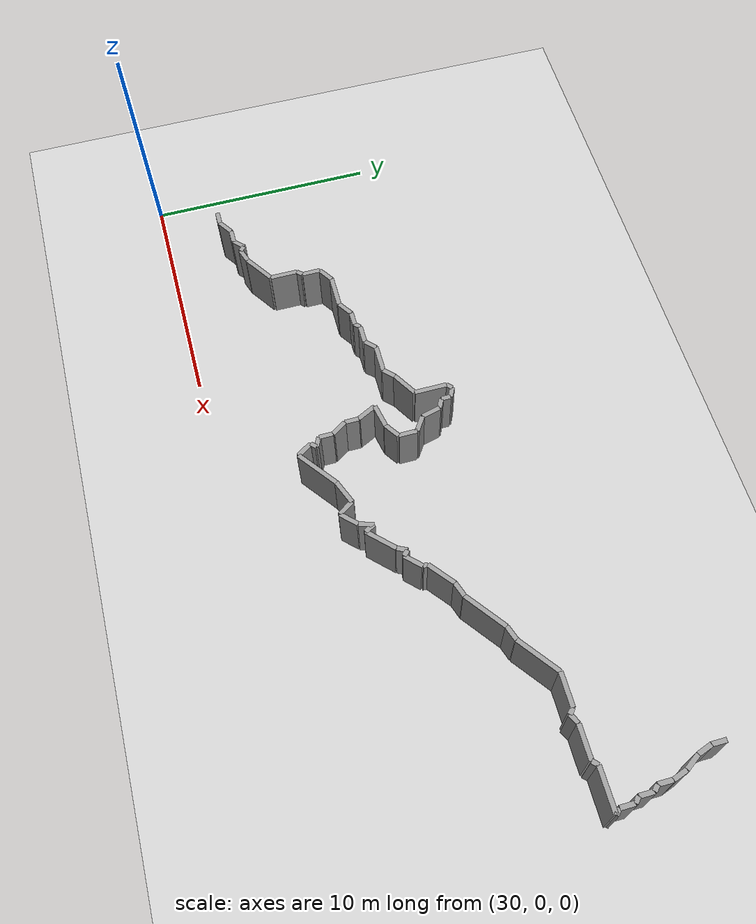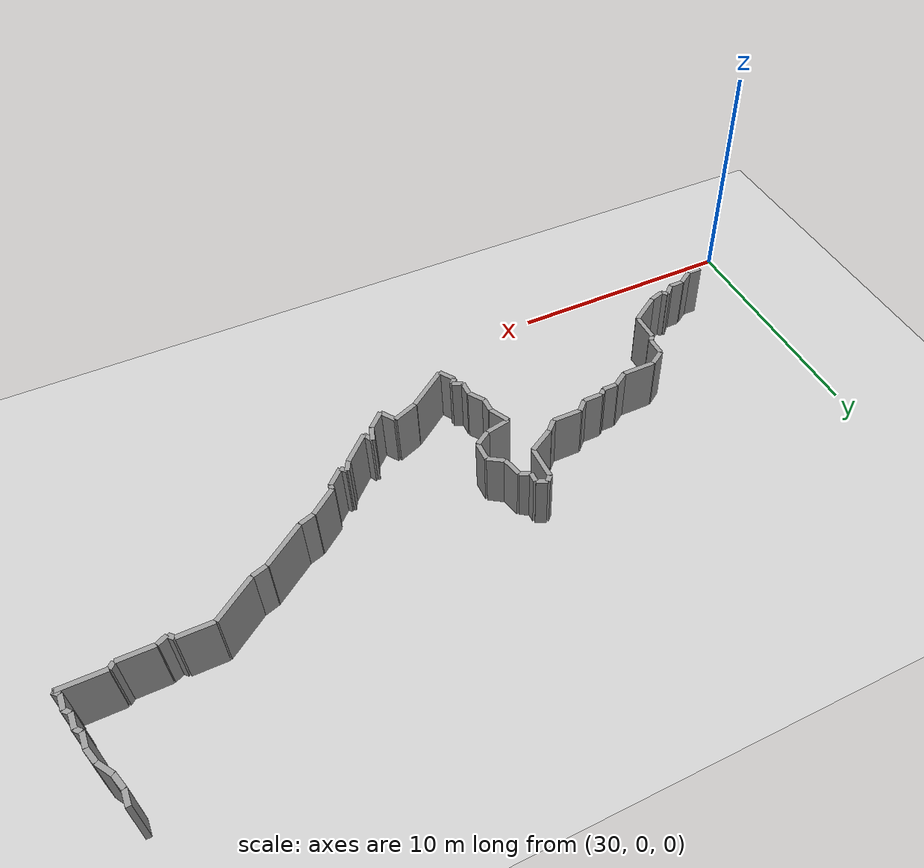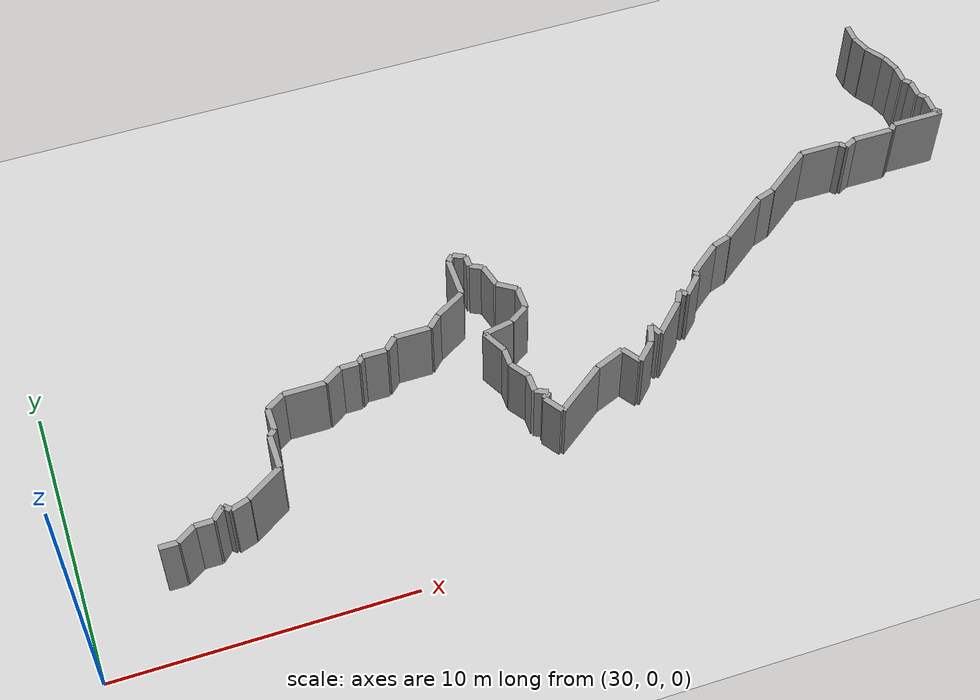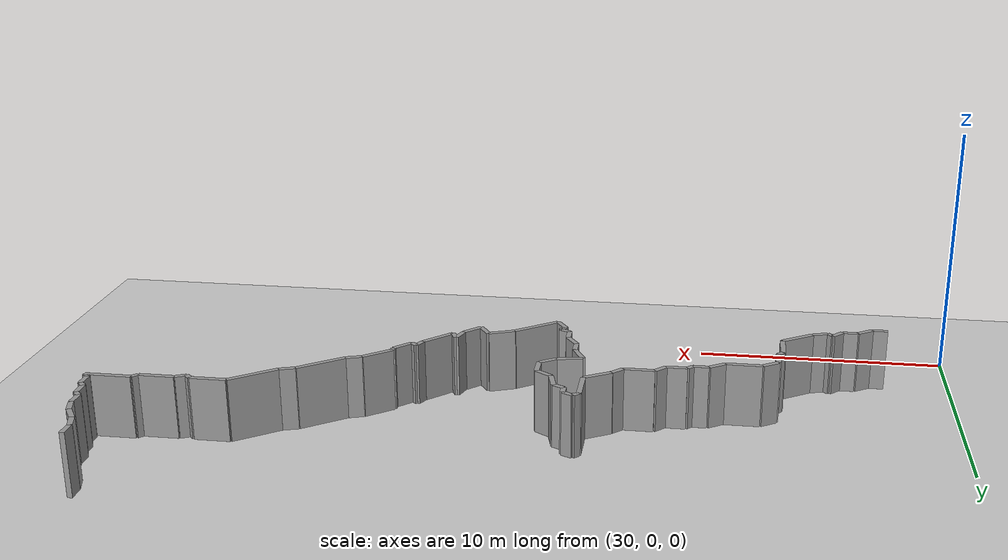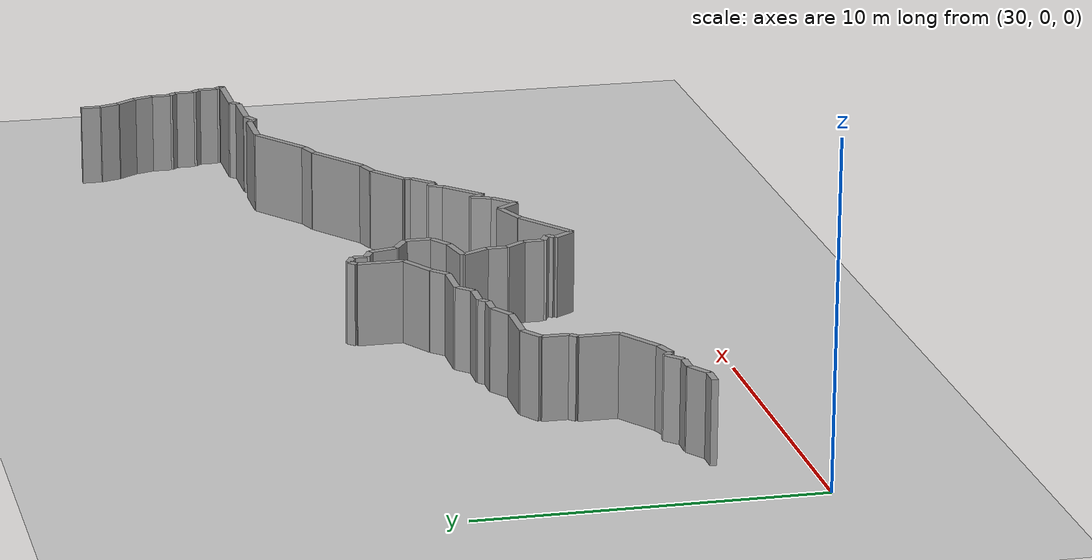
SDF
<sdf version="1.4">
 <world name="1_wall">
  <model name="ground_plane">
   <static>1</static>
   <link name="link">
    <collision name="collision">
     <geometry><plane><normal>0 0 1</normal><size>1000 1000</size></plane></geometry>
     <surface><friction><ode><mu>100</mu><mu2>50</mu2></ode></friction></surface>
    </collision>
    <visual name="visual">
     <cast_shadows>0</cast_shadows>
     <geometry><plane><normal>0 0 1</normal><size>10000 10000</size></plane></geometry>
     <material>
      <script><uri>file://media/materials/scripts/gazebo.material</uri><name>Gazebo/Grey</name></script>
     </material>
    </visual>
    <velocity_decay><linear>0</linear><angular>0</angular></velocity_decay>
   </link>
  </model>
  <model name="Wall_414">
   <static>1</static>
   <link name="Wall_414">
    <collision name="Wall_Collision_414">
     <geometry><box><size>0.6 0.2 2.5</size></box></geometry>
     <pose>0 0 1.25 0 -0 0</pose>
    </collision>
    <visual name="Wall_Visual_414">
     <pose>0 0 1.25 0 -0 0</pose>
     <geometry><box><size>0.6 0.2 2.5</size></box></geometry>
     <material>
      <script><uri>file://media/materials/scripts/gazebo.material</uri><name>Gazebo/Grey</name></script>
     </material>
    </visual>
    <velocity_decay><linear>0</linear><angular>0</angular></velocity_decay>
    <pose>61.2 15.5 0 0 0 -1.57079632679</pose>
   </link>
  </model>
  <model name="Wall_415">
   <static>1</static>
   <link name="Wall_415">
    <collision name="Wall_Collision_415">
     <geometry><box><size>0.632455532034 0.2 2.5</size></box></geometry>
     <pose>0 0 1.25 0 -0 0</pose>
    </collision>
    <visual name="Wall_Visual_415">
     <pose>0 0 1.25 0 -0 0</pose>
     <geometry><box><size>0.632455532034 0.2 2.5</size></box></geometry>
     <material>
      <script><uri>file://media/materials/scripts/gazebo.material</uri><name>Gazebo/Grey</name></script>
     </material>
    </visual>
    <velocity_decay><linear>0</linear><angular>0</angular></velocity_decay>
    <pose>61.3 14.9 0 0 0 -1.2490457724</pose>
   </link>
  </model>
  <model name="Wall_416">
   <static>1</static>
   <link name="Wall_416">
    <collision name="Wall_Collision_416">
     <geometry><box><size>0.721110255093 0.2 2.5</size></box></geometry>
     <pose>0 0 1.25 0 -0 0</pose>
    </collision>
    <visual name="Wall_Visual_416">
     <pose>0 0 1.25 0 -0 0</pose>
     <geometry><box><size>0.721110255093 0.2 2.5</size></box></geometry>
     <material>
      <script><uri>file://media/materials/scripts/gazebo.material</uri><name>Gazebo/Grey</name></script>
     </material>
    </visual>
    <velocity_decay><linear>0</linear><angular>0</angular></velocity_decay>
    <pose>61.6 14.3 0 0 0 -0.982793723247</pose>
   </link>
  </model>
  <model name="Wall_417">
   <static>1</static>
   <link name="Wall_417">
    <collision name="Wall_Collision_417">
     <geometry><box><size>0.632455532034 0.2 2.5</size></box></geometry>
     <pose>0 0 1.25 0 -0 0</pose>
    </collision>
    <visual name="Wall_Visual_417">
     <pose>0 0 1.25 0 -0 0</pose>
     <geometry><box><size>0.632455532034 0.2 2.5</size></box></geometry>
     <material>
      <script><uri>file://media/materials/scripts/gazebo.material</uri><name>Gazebo/Grey</name></script>
     </material>
    </visual>
    <velocity_decay><linear>0</linear><angular>0</angular></velocity_decay>
    <pose>61.9 13.7 0 0 0 -1.2490457724</pose>
   </link>
  </model>
  <model name="Wall_418">
   <static>1</static>
   <link name="Wall_418">
    <collision name="Wall_Collision_418">
     <geometry><box><size>0.6 0.2 2.5</size></box></geometry>
     <pose>0 0 1.25 0 -0 0</pose>
    </collision>
    <visual name="Wall_Visual_418">
     <pose>0 0 1.25 0 -0 0</pose>
     <geometry><box><size>0.6 0.2 2.5</size></box></geometry>
     <material>
      <script><uri>file://media/materials/scripts/gazebo.material</uri><name>Gazebo/Grey</name></script>
     </material>
    </visual>
    <velocity_decay><linear>0</linear><angular>0</angular></velocity_decay>
    <pose>62.0 13.1 0 0 0 -1.57079632679</pose>
   </link>
  </model>
  <model name="Wall_419">
   <static>1</static>
   <link name="Wall_419">
    <collision name="Wall_Collision_419">
     <geometry><box><size>0.282842712475 0.2 2.5</size></box></geometry>
     <pose>0 0 1.25 0 -0 0</pose>
    </collision>
    <visual name="Wall_Visual_419">
     <pose>0 0 1.25 0 -0 0</pose>
     <geometry><box><size>0.282842712475 0.2 2.5</size></box></geometry>
     <material>
      <script><uri>file://media/materials/scripts/gazebo.material</uri><name>Gazebo/Grey</name></script>
     </material>
    </visual>
    <velocity_decay><linear>0</linear><angular>0</angular></velocity_decay>
    <pose>62.1 12.7 0 0 0 -0.785398163397</pose>
   </link>
  </model>
  <model name="Wall_420">
   <static>1</static>
   <link name="Wall_420">
    <collision name="Wall_Collision_420">
     <geometry><box><size>0.6 0.2 2.5</size></box></geometry>
     <pose>0 0 1.25 0 -0 0</pose>
    </collision>
    <visual name="Wall_Visual_420">
     <pose>0 0 1.25 0 -0 0</pose>
     <geometry><box><size>0.6 0.2 2.5</size></box></geometry>
     <material>
      <script><uri>file://media/materials/scripts/gazebo.material</uri><name>Gazebo/Grey</name></script>
     </material>
    </visual>
    <velocity_decay><linear>0</linear><angular>0</angular></velocity_decay>
    <pose>62.2 12.3 0 0 0 -1.57079632679</pose>
   </link>
  </model>
  <model name="Wall_421">
   <static>1</static>
   <link name="Wall_421">
    <collision name="Wall_Collision_421">
     <geometry><box><size>0.282842712475 0.2 2.5</size></box></geometry>
     <pose>0 0 1.25 0 -0 0</pose>
    </collision>
    <visual name="Wall_Visual_421">
     <pose>0 0 1.25 0 -0 0</pose>
     <geometry><box><size>0.282842712475 0.2 2.5</size></box></geometry>
     <material>
      <script><uri>file://media/materials/scripts/gazebo.material</uri><name>Gazebo/Grey</name></script>
     </material>
    </visual>
    <velocity_decay><linear>0</linear><angular>0</angular></velocity_decay>
    <pose>62.3 11.9 0 0 0 -0.785398163397</pose>
   </link>
  </model>
  <model name="Wall_422">
   <static>1</static>
   <link name="Wall_422">
    <collision name="Wall_Collision_422">
     <geometry><box><size>0.6 0.2 2.5</size></box></geometry>
     <pose>0 0 1.25 0 -0 0</pose>
    </collision>
    <visual name="Wall_Visual_422">
     <pose>0 0 1.25 0 -0 0</pose>
     <geometry><box><size>0.6 0.2 2.5</size></box></geometry>
     <material>
      <script><uri>file://media/materials/scripts/gazebo.material</uri><name>Gazebo/Grey</name></script>
     </material>
    </visual>
    <velocity_decay><linear>0</linear><angular>0</angular></velocity_decay>
    <pose>62.4 11.5 0 0 0 -1.57079632679</pose>
   </link>
  </model>
  <model name="Wall_423">
   <static>1</static>
   <link name="Wall_423">
    <collision name="Wall_Collision_423">
     <geometry><box><size>0.282842712475 0.2 2.5</size></box></geometry>
     <pose>0 0 1.25 0 -0 0</pose>
    </collision>
    <visual name="Wall_Visual_423">
     <pose>0 0 1.25 0 -0 0</pose>
     <geometry><box><size>0.282842712475 0.2 2.5</size></box></geometry>
     <material>
      <script><uri>file://media/materials/scripts/gazebo.material</uri><name>Gazebo/Grey</name></script>
     </material>
    </visual>
    <velocity_decay><linear>0</linear><angular>0</angular></velocity_decay>
    <pose>62.5 11.1 0 0 0 -0.785398163397</pose>
   </link>
  </model>
  <model name="Wall_424">
   <static>1</static>
   <link name="Wall_424">
    <collision name="Wall_Collision_424">
     <geometry><box><size>1.8 0.2 2.5</size></box></geometry>
     <pose>0 0 1.25 0 -0 0</pose>
    </collision>
    <visual name="Wall_Visual_424">
     <pose>0 0 1.25 0 -0 0</pose>
     <geometry><box><size>1.8 0.2 2.5</size></box></geometry>
     <material>
      <script><uri>file://media/materials/scripts/gazebo.material</uri><name>Gazebo/Grey</name></script>
     </material>
    </visual>
    <velocity_decay><linear>0</linear><angular>0</angular></velocity_decay>
    <pose>61.7 11.0 0 0 0 3.14159265359</pose>
   </link>
  </model>
  <model name="Wall_425">
   <static>1</static>
   <link name="Wall_425">
    <collision name="Wall_Collision_425">
     <geometry><box><size>0.282842712475 0.2 2.5</size></box></geometry>
     <pose>0 0 1.25 0 -0 0</pose>
    </collision>
    <visual name="Wall_Visual_425">
     <pose>0 0 1.25 0 -0 0</pose>
     <geometry><box><size>0.282842712475 0.2 2.5</size></box></geometry>
     <material>
      <script><uri>file://media/materials/scripts/gazebo.material</uri><name>Gazebo/Grey</name></script>
     </material>
    </visual>
    <velocity_decay><linear>0</linear><angular>0</angular></velocity_decay>
    <pose>60.7 10.9 0 0 0 -2.35619449019</pose>
   </link>
  </model>
  <model name="Wall_426">
   <static>1</static>
   <link name="Wall_426">
    <collision name="Wall_Collision_426">
     <geometry><box><size>1.4 0.2 2.5</size></box></geometry>
     <pose>0 0 1.25 0 -0 0</pose>
    </collision>
    <visual name="Wall_Visual_426">
     <pose>0 0 1.25 0 -0 0</pose>
     <geometry><box><size>1.4 0.2 2.5</size></box></geometry>
     <material>
      <script><uri>file://media/materials/scripts/gazebo.material</uri><name>Gazebo/Grey</name></script>
     </material>
    </visual>
    <velocity_decay><linear>0</linear><angular>0</angular></velocity_decay>
    <pose>59.9 10.8 0 0 0 3.14159265359</pose>
   </link>
  </model>
  <model name="Wall_427">
   <static>1</static>
   <link name="Wall_427">
    <collision name="Wall_Collision_427">
     <geometry><box><size>0.4472135955 0.2 2.5</size></box></geometry>
     <pose>0 0 1.25 0 -0 0</pose>
    </collision>
    <visual name="Wall_Visual_427">
     <pose>0 0 1.25 0 -0 0</pose>
     <geometry><box><size>0.4472135955 0.2 2.5</size></box></geometry>
     <material>
      <script><uri>file://media/materials/scripts/gazebo.material</uri><name>Gazebo/Grey</name></script>
     </material>
    </visual>
    <velocity_decay><linear>0</linear><angular>0</angular></velocity_decay>
    <pose>59.0 10.7 0 0 0 -2.67794504459</pose>
   </link>
  </model>
  <model name="Wall_428">
   <static>1</static>
   <link name="Wall_428">
    <collision name="Wall_Collision_428">
     <geometry><box><size>0.282842712475 0.2 2.5</size></box></geometry>
     <pose>0 0 1.25 0 -0 0</pose>
    </collision>
    <visual name="Wall_Visual_428">
     <pose>0 0 1.25 0 -0 0</pose>
     <geometry><box><size>0.282842712475 0.2 2.5</size></box></geometry>
     <material>
      <script><uri>file://media/materials/scripts/gazebo.material</uri><name>Gazebo/Grey</name></script>
     </material>
    </visual>
    <velocity_decay><linear>0</linear><angular>0</angular></velocity_decay>
    <pose>58.7 10.7 0 0 0 2.35619449019</pose>
   </link>
  </model>
  <model name="Wall_429">
   <static>1</static>
   <link name="Wall_429">
    <collision name="Wall_Collision_429">
     <geometry><box><size>1.4 0.2 2.5</size></box></geometry>
     <pose>0 0 1.25 0 -0 0</pose>
    </collision>
    <visual name="Wall_Visual_429">
     <pose>0 0 1.25 0 -0 0</pose>
     <geometry><box><size>1.4 0.2 2.5</size></box></geometry>
     <material>
      <script><uri>file://media/materials/scripts/gazebo.material</uri><name>Gazebo/Grey</name></script>
     </material>
    </visual>
    <velocity_decay><linear>0</linear><angular>0</angular></velocity_decay>
    <pose>57.9 10.8 0 0 0 3.14159265359</pose>
   </link>
  </model>
  <model name="Wall_430">
   <static>1</static>
   <link name="Wall_430">
    <collision name="Wall_Collision_430">
     <geometry><box><size>2.0 0.2 2.5</size></box></geometry>
     <pose>0 0 1.25 0 -0 0</pose>
    </collision>
    <visual name="Wall_Visual_430">
     <pose>0 0 1.25 0 -0 0</pose>
     <geometry><box><size>2.0 0.2 2.5</size></box></geometry>
     <material>
      <script><uri>file://media/materials/scripts/gazebo.material</uri><name>Gazebo/Grey</name></script>
     </material>
    </visual>
    <velocity_decay><linear>0</linear><angular>0</angular></velocity_decay>
    <pose>56.4 10.2 0 0 0 -2.4980915448</pose>
   </link>
  </model>
  <model name="Wall_431">
   <static>1</static>
   <link name="Wall_431">
    <collision name="Wall_Collision_431">
     <geometry><box><size>0.632455532034 0.2 2.5</size></box></geometry>
     <pose>0 0 1.25 0 -0 0</pose>
    </collision>
    <visual name="Wall_Visual_431">
     <pose>0 0 1.25 0 -0 0</pose>
     <geometry><box><size>0.632455532034 0.2 2.5</size></box></geometry>
     <material>
      <script><uri>file://media/materials/scripts/gazebo.material</uri><name>Gazebo/Grey</name></script>
     </material>
    </visual>
    <velocity_decay><linear>0</linear><angular>0</angular></velocity_decay>
    <pose>55.3 9.5 0 0 0 -2.81984209919</pose>
   </link>
  </model>
  <model name="Wall_432">
   <static>1</static>
   <link name="Wall_432">
    <collision name="Wall_Collision_432">
     <geometry><box><size>2.0 0.2 2.5</size></box></geometry>
     <pose>0 0 1.25 0 -0 0</pose>
    </collision>
    <visual name="Wall_Visual_432">
     <pose>0 0 1.25 0 -0 0</pose>
     <geometry><box><size>2.0 0.2 2.5</size></box></geometry>
     <material>
      <script><uri>file://media/materials/scripts/gazebo.material</uri><name>Gazebo/Grey</name></script>
     </material>
    </visual>
    <velocity_decay><linear>0</linear><angular>0</angular></velocity_decay>
    <pose>54.2 8.8 0 0 0 -2.4980915448</pose>
   </link>
  </model>
  <model name="Wall_433">
   <static>1</static>
   <link name="Wall_433">
    <collision name="Wall_Collision_433">
     <geometry><box><size>0.632455532034 0.2 2.5</size></box></geometry>
     <pose>0 0 1.25 0 -0 0</pose>
    </collision>
    <visual name="Wall_Visual_433">
     <pose>0 0 1.25 0 -0 0</pose>
     <geometry><box><size>0.632455532034 0.2 2.5</size></box></geometry>
     <material>
      <script><uri>file://media/materials/scripts/gazebo.material</uri><name>Gazebo/Grey</name></script>
     </material>
    </visual>
    <velocity_decay><linear>0</linear><angular>0</angular></velocity_decay>
    <pose>53.1 8.1 0 0 0 -2.81984209919</pose>
   </link>
  </model>
  <model name="Wall_434">
   <static>1</static>
   <link name="Wall_434">
    <collision name="Wall_Collision_434">
     <geometry><box><size>1.28062484749 0.2 2.5</size></box></geometry>
     <pose>0 0 1.25 0 -0 0</pose>
    </collision>
    <visual name="Wall_Visual_434">
     <pose>0 0 1.25 0 -0 0</pose>
     <geometry><box><size>1.28062484749 0.2 2.5</size></box></geometry>
     <material>
      <script><uri>file://media/materials/scripts/gazebo.material</uri><name>Gazebo/Grey</name></script>
     </material>
    </visual>
    <velocity_decay><linear>0</linear><angular>0</angular></velocity_decay>
    <pose>52.3 7.6 0 0 0 -2.46685171137</pose>
   </link>
  </model>
  <model name="Wall_435">
   <static>1</static>
   <link name="Wall_435">
    <collision name="Wall_Collision_435">
     <geometry><box><size>0.2 0.2 2.5</size></box></geometry>
     <pose>0 0 1.25 0 -0 0</pose>
    </collision>
    <visual name="Wall_Visual_435">
     <pose>0 0 1.25 0 -0 0</pose>
     <geometry><box><size>0.2 0.2 2.5</size></box></geometry>
     <material>
      <script><uri>file://media/materials/scripts/gazebo.material</uri><name>Gazebo/Grey</name></script>
     </material>
    </visual>
    <velocity_decay><linear>0</linear><angular>0</angular></velocity_decay>
    <pose>51.8 7.1 0 0 0 -1.57079632679</pose>
   </link>
  </model>
  <model name="Wall_436">
   <static>1</static>
   <link name="Wall_436">
    <collision name="Wall_Collision_436">
     <geometry><box><size>0.848528137424 0.2 2.5</size></box></geometry>
     <pose>0 0 1.25 0 -0 0</pose>
    </collision>
    <visual name="Wall_Visual_436">
     <pose>0 0 1.25 0 -0 0</pose>
     <geometry><box><size>0.848528137424 0.2 2.5</size></box></geometry>
     <material>
      <script><uri>file://media/materials/scripts/gazebo.material</uri><name>Gazebo/Grey</name></script>
     </material>
    </visual>
    <velocity_decay><linear>0</linear><angular>0</angular></velocity_decay>
    <pose>51.5 6.7 0 0 0 -2.35619449019</pose>
   </link>
  </model>
  <model name="Wall_437">
   <static>1</static>
   <link name="Wall_437">
    <collision name="Wall_Collision_437">
     <geometry><box><size>0.282842712475 0.2 2.5</size></box></geometry>
     <pose>0 0 1.25 0 -0 0</pose>
    </collision>
    <visual name="Wall_Visual_437">
     <pose>0 0 1.25 0 -0 0</pose>
     <geometry><box><size>0.282842712475 0.2 2.5</size></box></geometry>
     <material>
      <script><uri>file://media/materials/scripts/gazebo.material</uri><name>Gazebo/Grey</name></script>
     </material>
    </visual>
    <velocity_decay><linear>0</linear><angular>0</angular></velocity_decay>
    <pose>51.1 6.5 0 0 0 2.35619449019</pose>
   </link>
  </model>
  <model name="Wall_438">
   <static>1</static>
   <link name="Wall_438">
    <collision name="Wall_Collision_438">
     <geometry><box><size>0.4472135955 0.2 2.5</size></box></geometry>
     <pose>0 0 1.25 0 -0 0</pose>
    </collision>
    <visual name="Wall_Visual_438">
     <pose>0 0 1.25 0 -0 0</pose>
     <geometry><box><size>0.4472135955 0.2 2.5</size></box></geometry>
     <material>
      <script><uri>file://media/materials/scripts/gazebo.material</uri><name>Gazebo/Grey</name></script>
     </material>
    </visual>
    <velocity_decay><linear>0</linear><angular>0</angular></velocity_decay>
    <pose>50.9 6.4 0 0 0 -2.0344439358</pose>
   </link>
  </model>
  <model name="Wall_439">
   <static>1</static>
   <link name="Wall_439">
    <collision name="Wall_Collision_439">
     <geometry><box><size>1.41421356237 0.2 2.5</size></box></geometry>
     <pose>0 0 1.25 0 -0 0</pose>
    </collision>
    <visual name="Wall_Visual_439">
     <pose>0 0 1.25 0 -0 0</pose>
     <geometry><box><size>1.41421356237 0.2 2.5</size></box></geometry>
     <material>
      <script><uri>file://media/materials/scripts/gazebo.material</uri><name>Gazebo/Grey</name></script>
     </material>
    </visual>
    <velocity_decay><linear>0</linear><angular>0</angular></velocity_decay>
    <pose>50.3 5.7 0 0 0 -2.35619449019</pose>
   </link>
  </model>
  <model name="Wall_440">
   <static>1</static>
   <link name="Wall_440">
    <collision name="Wall_Collision_440">
     <geometry><box><size>0.4472135955 0.2 2.5</size></box></geometry>
     <pose>0 0 1.25 0 -0 0</pose>
    </collision>
    <visual name="Wall_Visual_440">
     <pose>0 0 1.25 0 -0 0</pose>
     <geometry><box><size>0.4472135955 0.2 2.5</size></box></geometry>
     <material>
      <script><uri>file://media/materials/scripts/gazebo.material</uri><name>Gazebo/Grey</name></script>
     </material>
    </visual>
    <velocity_decay><linear>0</linear><angular>0</angular></velocity_decay>
    <pose>49.7 5.4 0 0 0 2.0344439358</pose>
   </link>
  </model>
  <model name="Wall_441">
   <static>1</static>
   <link name="Wall_441">
    <collision name="Wall_Collision_441">
     <geometry><box><size>0.632455532034 0.2 2.5</size></box></geometry>
     <pose>0 0 1.25 0 -0 0</pose>
    </collision>
    <visual name="Wall_Visual_441">
     <pose>0 0 1.25 0 -0 0</pose>
     <geometry><box><size>0.632455532034 0.2 2.5</size></box></geometry>
     <material>
      <script><uri>file://media/materials/scripts/gazebo.material</uri><name>Gazebo/Grey</name></script>
     </material>
    </visual>
    <velocity_decay><linear>0</linear><angular>0</angular></velocity_decay>
    <pose>49.5 5.3 0 0 0 -1.89254688119</pose>
   </link>
  </model>
  <model name="Wall_442">
   <static>1</static>
   <link name="Wall_442">
    <collision name="Wall_Collision_442">
     <geometry><box><size>0.848528137424 0.2 2.5</size></box></geometry>
     <pose>0 0 1.25 0 -0 0</pose>
    </collision>
    <visual name="Wall_Visual_442">
     <pose>0 0 1.25 0 -0 0</pose>
     <geometry><box><size>0.848528137424 0.2 2.5</size></box></geometry>
     <material>
      <script><uri>file://media/materials/scripts/gazebo.material</uri><name>Gazebo/Grey</name></script>
     </material>
    </visual>
    <velocity_decay><linear>0</linear><angular>0</angular></velocity_decay>
    <pose>49.1 4.7 0 0 0 -2.35619449019</pose>
   </link>
  </model>
  <model name="Wall_443">
   <static>1</static>
   <link name="Wall_443">
    <collision name="Wall_Collision_443">
     <geometry><box><size>0.721110255093 0.2 2.5</size></box></geometry>
     <pose>0 0 1.25 0 -0 0</pose>
    </collision>
    <visual name="Wall_Visual_443">
     <pose>0 0 1.25 0 -0 0</pose>
     <geometry><box><size>0.721110255093 0.2 2.5</size></box></geometry>
     <material>
      <script><uri>file://media/materials/scripts/gazebo.material</uri><name>Gazebo/Grey</name></script>
     </material>
    </visual>
    <velocity_decay><linear>0</linear><angular>0</angular></velocity_decay>
    <pose>48.6 4.7 0 0 0 2.15879893034</pose>
   </link>
  </model>
  <model name="Wall_444">
   <static>1</static>
   <link name="Wall_444">
    <collision name="Wall_Collision_444">
     <geometry><box><size>1.07703296143 0.2 2.5</size></box></geometry>
     <pose>0 0 1.25 0 -0 0</pose>
    </collision>
    <visual name="Wall_Visual_444">
     <pose>0 0 1.25 0 -0 0</pose>
     <geometry><box><size>1.07703296143 0.2 2.5</size></box></geometry>
     <material>
      <script><uri>file://media/materials/scripts/gazebo.material</uri><name>Gazebo/Grey</name></script>
     </material>
    </visual>
    <velocity_decay><linear>0</linear><angular>0</angular></velocity_decay>
    <pose>47.9 4.8 0 0 0 -2.76108627648</pose>
   </link>
  </model>
  <model name="Wall_445">
   <static>1</static>
   <link name="Wall_445">
    <collision name="Wall_Collision_445">
     <geometry><box><size>2.0 0.2 2.5</size></box></geometry>
     <pose>0 0 1.25 0 -0 0</pose>
    </collision>
    <visual name="Wall_Visual_445">
     <pose>0 0 1.25 0 -0 0</pose>
     <geometry><box><size>2.0 0.2 2.5</size></box></geometry>
     <material>
      <script><uri>file://media/materials/scripts/gazebo.material</uri><name>Gazebo/Grey</name></script>
     </material>
    </visual>
    <velocity_decay><linear>0</linear><angular>0</angular></velocity_decay>
    <pose>46.6 4.0 0 0 0 -2.4980915448</pose>
   </link>
  </model>
  <model name="Wall_446">
   <static>1</static>
   <link name="Wall_446">
    <collision name="Wall_Collision_446">
     <geometry><box><size>0.721110255093 0.2 2.5</size></box></geometry>
     <pose>0 0 1.25 0 -0 0</pose>
    </collision>
    <visual name="Wall_Visual_446">
     <pose>0 0 1.25 0 -0 0</pose>
     <geometry><box><size>0.721110255093 0.2 2.5</size></box></geometry>
     <material>
      <script><uri>file://media/materials/scripts/gazebo.material</uri><name>Gazebo/Grey</name></script>
     </material>
    </visual>
    <velocity_decay><linear>0</linear><angular>0</angular></velocity_decay>
    <pose>45.6 3.7 0 0 0 2.15879893034</pose>
   </link>
  </model>
  <model name="Wall_447">
   <static>1</static>
   <link name="Wall_447">
    <collision name="Wall_Collision_447">
     <geometry><box><size>0.282842712475 0.2 2.5</size></box></geometry>
     <pose>0 0 1.25 0 -0 0</pose>
    </collision>
    <visual name="Wall_Visual_447">
     <pose>0 0 1.25 0 -0 0</pose>
     <geometry><box><size>0.282842712475 0.2 2.5</size></box></geometry>
     <material>
      <script><uri>file://media/materials/scripts/gazebo.material</uri><name>Gazebo/Grey</name></script>
     </material>
    </visual>
    <velocity_decay><linear>0</linear><angular>0</angular></velocity_decay>
    <pose>45.5 4.1 0 0 0 0.785398163397</pose>
   </link>
  </model>
  <model name="Wall_448">
   <static>1</static>
   <link name="Wall_448">
    <collision name="Wall_Collision_448">
     <geometry><box><size>0.4472135955 0.2 2.5</size></box></geometry>
     <pose>0 0 1.25 0 -0 0</pose>
    </collision>
    <visual name="Wall_Visual_448">
     <pose>0 0 1.25 0 -0 0</pose>
     <geometry><box><size>0.4472135955 0.2 2.5</size></box></geometry>
     <material>
      <script><uri>file://media/materials/scripts/gazebo.material</uri><name>Gazebo/Grey</name></script>
     </material>
    </visual>
    <velocity_decay><linear>0</linear><angular>0</angular></velocity_decay>
    <pose>45.4 4.3 0 0 0 2.67794504459</pose>
   </link>
  </model>
  <model name="Wall_449">
   <static>1</static>
   <link name="Wall_449">
    <collision name="Wall_Collision_449">
     <geometry><box><size>0.6 0.2 2.5</size></box></geometry>
     <pose>0 0 1.25 0 -0 0</pose>
    </collision>
    <visual name="Wall_Visual_449">
     <pose>0 0 1.25 0 -0 0</pose>
     <geometry><box><size>0.6 0.2 2.5</size></box></geometry>
     <material>
      <script><uri>file://media/materials/scripts/gazebo.material</uri><name>Gazebo/Grey</name></script>
     </material>
    </visual>
    <velocity_decay><linear>0</linear><angular>0</angular></velocity_decay>
    <pose>45.2 4.7 0 0 0 1.57079632679</pose>
   </link>
  </model>
  <model name="Wall_450">
   <static>1</static>
   <link name="Wall_450">
    <collision name="Wall_Collision_450">
     <geometry><box><size>0.721110255093 0.2 2.5</size></box></geometry>
     <pose>0 0 1.25 0 -0 0</pose>
    </collision>
    <visual name="Wall_Visual_450">
     <pose>0 0 1.25 0 -0 0</pose>
     <geometry><box><size>0.721110255093 0.2 2.5</size></box></geometry>
     <material>
      <script><uri>file://media/materials/scripts/gazebo.material</uri><name>Gazebo/Grey</name></script>
     </material>
    </visual>
    <velocity_decay><linear>0</linear><angular>0</angular></velocity_decay>
    <pose>45.0 5.3 0 0 0 2.15879893034</pose>
   </link>
  </model>
  <model name="Wall_451">
   <static>1</static>
   <link name="Wall_451">
    <collision name="Wall_Collision_451">
     <geometry><box><size>0.6 0.2 2.5</size></box></geometry>
     <pose>0 0 1.25 0 -0 0</pose>
    </collision>
    <visual name="Wall_Visual_451">
     <pose>0 0 1.25 0 -0 0</pose>
     <geometry><box><size>0.6 0.2 2.5</size></box></geometry>
     <material>
      <script><uri>file://media/materials/scripts/gazebo.material</uri><name>Gazebo/Grey</name></script>
     </material>
    </visual>
    <velocity_decay><linear>0</linear><angular>0</angular></velocity_decay>
    <pose>44.8 5.9 0 0 0 1.57079632679</pose>
   </link>
  </model>
  <model name="Wall_452">
   <static>1</static>
   <link name="Wall_452">
    <collision name="Wall_Collision_452">
     <geometry><box><size>0.894427191 0.2 2.5</size></box></geometry>
     <pose>0 0 1.25 0 -0 0</pose>
    </collision>
    <visual name="Wall_Visual_452">
     <pose>0 0 1.25 0 -0 0</pose>
     <geometry><box><size>0.894427191 0.2 2.5</size></box></geometry>
     <material>
      <script><uri>file://media/materials/scripts/gazebo.material</uri><name>Gazebo/Grey</name></script>
     </material>
    </visual>
    <velocity_decay><linear>0</linear><angular>0</angular></velocity_decay>
    <pose>44.6 6.6 0 0 0 2.0344439358</pose>
   </link>
  </model>
  <model name="Wall_453">
   <static>1</static>
   <link name="Wall_453">
    <collision name="Wall_Collision_453">
     <geometry><box><size>1.01980390272 0.2 2.5</size></box></geometry>
     <pose>0 0 1.25 0 -0 0</pose>
    </collision>
    <visual name="Wall_Visual_453">
     <pose>0 0 1.25 0 -0 0</pose>
     <geometry><box><size>1.01980390272 0.2 2.5</size></box></geometry>
     <material>
      <script><uri>file://media/materials/scripts/gazebo.material</uri><name>Gazebo/Grey</name></script>
     </material>
    </visual>
    <velocity_decay><linear>0</linear><angular>0</angular></velocity_decay>
    <pose>44.9 7.1 0 0 0 0.19739555985</pose>
   </link>
  </model>
  <model name="Wall_454">
   <static>1</static>
   <link name="Wall_454">
    <collision name="Wall_Collision_454">
     <geometry><box><size>0.721110255093 0.2 2.5</size></box></geometry>
     <pose>0 0 1.25 0 -0 0</pose>
    </collision>
    <visual name="Wall_Visual_454">
     <pose>0 0 1.25 0 -0 0</pose>
     <geometry><box><size>0.721110255093 0.2 2.5</size></box></geometry>
     <material>
      <script><uri>file://media/materials/scripts/gazebo.material</uri><name>Gazebo/Grey</name></script>
     </material>
    </visual>
    <velocity_decay><linear>0</linear><angular>0</angular></velocity_decay>
    <pose>45.7 7.4 0 0 0 0.588002603548</pose>
   </link>
  </model>
  <model name="Wall_455">
   <static>1</static>
   <link name="Wall_455">
    <collision name="Wall_Collision_455">
     <geometry><box><size>0.8 0.2 2.5</size></box></geometry>
     <pose>0 0 1.25 0 -0 0</pose>
    </collision>
    <visual name="Wall_Visual_455">
     <pose>0 0 1.25 0 -0 0</pose>
     <geometry><box><size>0.8 0.2 2.5</size></box></geometry>
     <material>
      <script><uri>file://media/materials/scripts/gazebo.material</uri><name>Gazebo/Grey</name></script>
     </material>
    </visual>
    <velocity_decay><linear>0</linear><angular>0</angular></velocity_decay>
    <pose>46.0 8.0 0 0 0 1.57079632679</pose>
   </link>
  </model>
  <model name="Wall_456">
   <static>1</static>
   <link name="Wall_456">
    <collision name="Wall_Collision_456">
     <geometry><box><size>0.721110255093 0.2 2.5</size></box></geometry>
     <pose>0 0 1.25 0 -0 0</pose>
    </collision>
    <visual name="Wall_Visual_456">
     <pose>0 0 1.25 0 -0 0</pose>
     <geometry><box><size>0.721110255093 0.2 2.5</size></box></geometry>
     <material>
      <script><uri>file://media/materials/scripts/gazebo.material</uri><name>Gazebo/Grey</name></script>
     </material>
    </visual>
    <velocity_decay><linear>0</linear><angular>0</angular></velocity_decay>
    <pose>45.7 8.6 0 0 0 2.55359005004</pose>
   </link>
  </model>
  <model name="Wall_457">
   <static>1</static>
   <link name="Wall_457">
    <collision name="Wall_Collision_457">
     <geometry><box><size>0.824621125124 0.2 2.5</size></box></geometry>
     <pose>0 0 1.25 0 -0 0</pose>
    </collision>
    <visual name="Wall_Visual_457">
     <pose>0 0 1.25 0 -0 0</pose>
     <geometry><box><size>0.824621125124 0.2 2.5</size></box></geometry>
     <material>
      <script><uri>file://media/materials/scripts/gazebo.material</uri><name>Gazebo/Grey</name></script>
     </material>
    </visual>
    <velocity_decay><linear>0</linear><angular>0</angular></velocity_decay>
    <pose>45.3 9.2 0 0 0 1.81577498992</pose>
   </link>
  </model>
  <model name="Wall_458">
   <static>1</static>
   <link name="Wall_458">
    <collision name="Wall_Collision_458">
     <geometry><box><size>0.4472135955 0.2 2.5</size></box></geometry>
     <pose>0 0 1.25 0 -0 0</pose>
    </collision>
    <visual name="Wall_Visual_458">
     <pose>0 0 1.25 0 -0 0</pose>
     <geometry><box><size>0.4472135955 0.2 2.5</size></box></geometry>
     <material>
      <script><uri>file://media/materials/scripts/gazebo.material</uri><name>Gazebo/Grey</name></script>
     </material>
    </visual>
    <velocity_decay><linear>0</linear><angular>0</angular></velocity_decay>
    <pose>45.0 9.7 0 0 0 2.67794504459</pose>
   </link>
  </model>
  <model name="Wall_459">
   <static>1</static>
   <link name="Wall_459">
    <collision name="Wall_Collision_459">
     <geometry><box><size>0.4 0.2 2.5</size></box></geometry>
     <pose>0 0 1.25 0 -0 0</pose>
    </collision>
    <visual name="Wall_Visual_459">
     <pose>0 0 1.25 0 -0 0</pose>
     <geometry><box><size>0.4 0.2 2.5</size></box></geometry>
     <material>
      <script><uri>file://media/materials/scripts/gazebo.material</uri><name>Gazebo/Grey</name></script>
     </material>
    </visual>
    <velocity_decay><linear>0</linear><angular>0</angular></velocity_decay>
    <pose>44.8 10.0 0 0 0 1.57079632679</pose>
   </link>
  </model>
  <model name="Wall_460">
   <static>1</static>
   <link name="Wall_460">
    <collision name="Wall_Collision_460">
     <geometry><box><size>0.4472135955 0.2 2.5</size></box></geometry>
     <pose>0 0 1.25 0 -0 0</pose>
    </collision>
    <visual name="Wall_Visual_460">
     <pose>0 0 1.25 0 -0 0</pose>
     <geometry><box><size>0.4472135955 0.2 2.5</size></box></geometry>
     <material>
      <script><uri>file://media/materials/scripts/gazebo.material</uri><name>Gazebo/Grey</name></script>
     </material>
    </visual>
    <velocity_decay><linear>0</linear><angular>0</angular></velocity_decay>
    <pose>44.6 10.3 0 0 0 2.67794504459</pose>
   </link>
  </model>
  <model name="Wall_461">
   <static>1</static>
   <link name="Wall_461">
    <collision name="Wall_Collision_461">
     <geometry><box><size>0.282842712475 0.2 2.5</size></box></geometry>
     <pose>0 0 1.25 0 -0 0</pose>
    </collision>
    <visual name="Wall_Visual_461">
     <pose>0 0 1.25 0 -0 0</pose>
     <geometry><box><size>0.282842712475 0.2 2.5</size></box></geometry>
     <material>
      <script><uri>file://media/materials/scripts/gazebo.material</uri><name>Gazebo/Grey</name></script>
     </material>
    </visual>
    <velocity_decay><linear>0</linear><angular>0</angular></velocity_decay>
    <pose>44.3 10.3 0 0 0 -2.35619449019</pose>
   </link>
  </model>
  <model name="Wall_462">
   <static>1</static>
   <link name="Wall_462">
    <collision name="Wall_Collision_462">
     <geometry><box><size>1.4 0.2 2.5</size></box></geometry>
     <pose>0 0 1.25 0 -0 0</pose>
    </collision>
    <visual name="Wall_Visual_462">
     <pose>0 0 1.25 0 -0 0</pose>
     <geometry><box><size>1.4 0.2 2.5</size></box></geometry>
     <material>
      <script><uri>file://media/materials/scripts/gazebo.material</uri><name>Gazebo/Grey</name></script>
     </material>
    </visual>
    <velocity_decay><linear>0</linear><angular>0</angular></velocity_decay>
    <pose>44.2 9.5 0 0 0 -1.57079632679</pose>
   </link>
  </model>
  <model name="Wall_463">
   <static>1</static>
   <link name="Wall_463">
    <collision name="Wall_Collision_463">
     <geometry><box><size>1.16619037897 0.2 2.5</size></box></geometry>
     <pose>0 0 1.25 0 -0 0</pose>
    </collision>
    <visual name="Wall_Visual_463">
     <pose>0 0 1.25 0 -0 0</pose>
     <geometry><box><size>1.16619037897 0.2 2.5</size></box></geometry>
     <material>
      <script><uri>file://media/materials/scripts/gazebo.material</uri><name>Gazebo/Grey</name></script>
     </material>
    </visual>
    <velocity_decay><linear>0</linear><angular>0</angular></velocity_decay>
    <pose>43.7 8.5 0 0 0 -2.60117315332</pose>
   </link>
  </model>
  <model name="Wall_464">
   <static>1</static>
   <link name="Wall_464">
    <collision name="Wall_Collision_464">
     <geometry><box><size>0.565685424949 0.2 2.5</size></box></geometry>
     <pose>0 0 1.25 0 -0 0</pose>
    </collision>
    <visual name="Wall_Visual_464">
     <pose>0 0 1.25 0 -0 0</pose>
     <geometry><box><size>0.565685424949 0.2 2.5</size></box></geometry>
     <material>
      <script><uri>file://media/materials/scripts/gazebo.material</uri><name>Gazebo/Grey</name></script>
     </material>
    </visual>
    <velocity_decay><linear>0</linear><angular>0</angular></velocity_decay>
    <pose>43.0 8.0 0 0 0 -2.35619449019</pose>
   </link>
  </model>
  <model name="Wall_465">
   <static>1</static>
   <link name="Wall_465">
    <collision name="Wall_Collision_465">
     <geometry><box><size>1.2 0.2 2.5</size></box></geometry>
     <pose>0 0 1.25 0 -0 0</pose>
    </collision>
    <visual name="Wall_Visual_465">
     <pose>0 0 1.25 0 -0 0</pose>
     <geometry><box><size>1.2 0.2 2.5</size></box></geometry>
     <material>
      <script><uri>file://media/materials/scripts/gazebo.material</uri><name>Gazebo/Grey</name></script>
     </material>
    </visual>
    <velocity_decay><linear>0</linear><angular>0</angular></velocity_decay>
    <pose>42.2 7.8 0 0 0 3.14159265359</pose>
   </link>
  </model>
  <model name="Wall_466">
   <static>1</static>
   <link name="Wall_466">
    <collision name="Wall_Collision_466">
     <geometry><box><size>0.565685424949 0.2 2.5</size></box></geometry>
     <pose>0 0 1.25 0 -0 0</pose>
    </collision>
    <visual name="Wall_Visual_466">
     <pose>0 0 1.25 0 -0 0</pose>
     <geometry><box><size>0.565685424949 0.2 2.5</size></box></geometry>
     <material>
      <script><uri>file://media/materials/scripts/gazebo.material</uri><name>Gazebo/Grey</name></script>
     </material>
    </visual>
    <velocity_decay><linear>0</linear><angular>0</angular></velocity_decay>
    <pose>41.4 7.6 0 0 0 -2.35619449019</pose>
   </link>
  </model>
  <model name="Wall_467">
   <static>1</static>
   <link name="Wall_467">
    <collision name="Wall_Collision_467">
     <geometry><box><size>0.8 0.2 2.5</size></box></geometry>
     <pose>0 0 1.25 0 -0 0</pose>
    </collision>
    <visual name="Wall_Visual_467">
     <pose>0 0 1.25 0 -0 0</pose>
     <geometry><box><size>0.8 0.2 2.5</size></box></geometry>
     <material>
      <script><uri>file://media/materials/scripts/gazebo.material</uri><name>Gazebo/Grey</name></script>
     </material>
    </visual>
    <velocity_decay><linear>0</linear><angular>0</angular></velocity_decay>
    <pose>40.8 7.4 0 0 0 3.14159265359</pose>
   </link>
  </model>
  <model name="Wall_468">
   <static>1</static>
   <link name="Wall_468">
    <collision name="Wall_Collision_468">
     <geometry><box><size>0.282842712475 0.2 2.5</size></box></geometry>
     <pose>0 0 1.25 0 -0 0</pose>
    </collision>
    <visual name="Wall_Visual_468">
     <pose>0 0 1.25 0 -0 0</pose>
     <geometry><box><size>0.282842712475 0.2 2.5</size></box></geometry>
     <material>
      <script><uri>file://media/materials/scripts/gazebo.material</uri><name>Gazebo/Grey</name></script>
     </material>
    </visual>
    <velocity_decay><linear>0</linear><angular>0</angular></velocity_decay>
    <pose>40.3 7.3 0 0 0 -2.35619449019</pose>
   </link>
  </model>
  <model name="Wall_469">
   <static>1</static>
   <link name="Wall_469">
    <collision name="Wall_Collision_469">
     <geometry><box><size>0.6 0.2 2.5</size></box></geometry>
     <pose>0 0 1.25 0 -0 0</pose>
    </collision>
    <visual name="Wall_Visual_469">
     <pose>0 0 1.25 0 -0 0</pose>
     <geometry><box><size>0.6 0.2 2.5</size></box></geometry>
     <material>
      <script><uri>file://media/materials/scripts/gazebo.material</uri><name>Gazebo/Grey</name></script>
     </material>
    </visual>
    <velocity_decay><linear>0</linear><angular>0</angular></velocity_decay>
    <pose>39.9 7.2 0 0 0 3.14159265359</pose>
   </link>
  </model>
  <model name="Wall_470">
   <static>1</static>
   <link name="Wall_470">
    <collision name="Wall_Collision_470">
     <geometry><box><size>0.721110255093 0.2 2.5</size></box></geometry>
     <pose>0 0 1.25 0 -0 0</pose>
    </collision>
    <visual name="Wall_Visual_470">
     <pose>0 0 1.25 0 -0 0</pose>
     <geometry><box><size>0.721110255093 0.2 2.5</size></box></geometry>
     <material>
      <script><uri>file://media/materials/scripts/gazebo.material</uri><name>Gazebo/Grey</name></script>
     </material>
    </visual>
    <velocity_decay><linear>0</linear><angular>0</angular></velocity_decay>
    <pose>39.3 7.0 0 0 0 -2.55359005004</pose>
   </link>
  </model>
  <model name="Wall_471">
   <static>1</static>
   <link name="Wall_471">
    <collision name="Wall_Collision_471">
     <geometry><box><size>1.4 0.2 2.5</size></box></geometry>
     <pose>0 0 1.25 0 -0 0</pose>
    </collision>
    <visual name="Wall_Visual_471">
     <pose>0 0 1.25 0 -0 0</pose>
     <geometry><box><size>1.4 0.2 2.5</size></box></geometry>
     <material>
      <script><uri>file://media/materials/scripts/gazebo.material</uri><name>Gazebo/Grey</name></script>
     </material>
    </visual>
    <velocity_decay><linear>0</linear><angular>0</angular></velocity_decay>
    <pose>38.3 6.8 0 0 0 3.14159265359</pose>
   </link>
  </model>
  <model name="Wall_472">
   <static>1</static>
   <link name="Wall_472">
    <collision name="Wall_Collision_472">
     <geometry><box><size>0.721110255093 0.2 2.5</size></box></geometry>
     <pose>0 0 1.25 0 -0 0</pose>
    </collision>
    <visual name="Wall_Visual_472">
     <pose>0 0 1.25 0 -0 0</pose>
     <geometry><box><size>0.721110255093 0.2 2.5</size></box></geometry>
     <material>
      <script><uri>file://media/materials/scripts/gazebo.material</uri><name>Gazebo/Grey</name></script>
     </material>
    </visual>
    <velocity_decay><linear>0</linear><angular>0</angular></velocity_decay>
    <pose>37.3 6.6 0 0 0 -2.55359005004</pose>
   </link>
  </model>
  <model name="Wall_473">
   <static>1</static>
   <link name="Wall_473">
    <collision name="Wall_Collision_473">
     <geometry><box><size>0.8 0.2 2.5</size></box></geometry>
     <pose>0 0 1.25 0 -0 0</pose>
    </collision>
    <visual name="Wall_Visual_473">
     <pose>0 0 1.25 0 -0 0</pose>
     <geometry><box><size>0.8 0.2 2.5</size></box></geometry>
     <material>
      <script><uri>file://media/materials/scripts/gazebo.material</uri><name>Gazebo/Grey</name></script>
     </material>
    </visual>
    <velocity_decay><linear>0</linear><angular>0</angular></velocity_decay>
    <pose>37.0 6.0 0 0 0 -1.57079632679</pose>
   </link>
  </model>
  <model name="Wall_474">
   <static>1</static>
   <link name="Wall_474">
    <collision name="Wall_Collision_474">
     <geometry><box><size>0.282842712475 0.2 2.5</size></box></geometry>
     <pose>0 0 1.25 0 -0 0</pose>
    </collision>
    <visual name="Wall_Visual_474">
     <pose>0 0 1.25 0 -0 0</pose>
     <geometry><box><size>0.282842712475 0.2 2.5</size></box></geometry>
     <material>
      <script><uri>file://media/materials/scripts/gazebo.material</uri><name>Gazebo/Grey</name></script>
     </material>
    </visual>
    <velocity_decay><linear>0</linear><angular>0</angular></velocity_decay>
    <pose>36.9 5.5 0 0 0 -2.35619449019</pose>
   </link>
  </model>
  <model name="Wall_475">
   <static>1</static>
   <link name="Wall_475">
    <collision name="Wall_Collision_475">
     <geometry><box><size>1.2 0.2 2.5</size></box></geometry>
     <pose>0 0 1.25 0 -0 0</pose>
    </collision>
    <visual name="Wall_Visual_475">
     <pose>0 0 1.25 0 -0 0</pose>
     <geometry><box><size>1.2 0.2 2.5</size></box></geometry>
     <material>
      <script><uri>file://media/materials/scripts/gazebo.material</uri><name>Gazebo/Grey</name></script>
     </material>
    </visual>
    <velocity_decay><linear>0</linear><angular>0</angular></velocity_decay>
    <pose>36.8 4.8 0 0 0 -1.57079632679</pose>
   </link>
  </model>
  <model name="Wall_476">
   <static>1</static>
   <link name="Wall_476">
    <collision name="Wall_Collision_476">
     <geometry><box><size>1.44222051019 0.2 2.5</size></box></geometry>
     <pose>0 0 1.25 0 -0 0</pose>
    </collision>
    <visual name="Wall_Visual_476">
     <pose>0 0 1.25 0 -0 0</pose>
     <geometry><box><size>1.44222051019 0.2 2.5</size></box></geometry>
     <material>
      <script><uri>file://media/materials/scripts/gazebo.material</uri><name>Gazebo/Grey</name></script>
     </material>
    </visual>
    <velocity_decay><linear>0</linear><angular>0</angular></velocity_decay>
    <pose>36.2 3.8 0 0 0 -2.55359005004</pose>
   </link>
  </model>
  <model name="Wall_477">
   <static>1</static>
   <link name="Wall_477">
    <collision name="Wall_Collision_477">
     <geometry><box><size>0.632455532034 0.2 2.5</size></box></geometry>
     <pose>0 0 1.25 0 -0 0</pose>
    </collision>
    <visual name="Wall_Visual_477">
     <pose>0 0 1.25 0 -0 0</pose>
     <geometry><box><size>0.632455532034 0.2 2.5</size></box></geometry>
     <material>
      <script><uri>file://media/materials/scripts/gazebo.material</uri><name>Gazebo/Grey</name></script>
     </material>
    </visual>
    <velocity_decay><linear>0</linear><angular>0</angular></velocity_decay>
    <pose>35.3 3.3 0 0 0 -2.81984209919</pose>
   </link>
  </model>
  <model name="Wall_478">
   <static>1</static>
   <link name="Wall_478">
    <collision name="Wall_Collision_478">
     <geometry><box><size>0.282842712475 0.2 2.5</size></box></geometry>
     <pose>0 0 1.25 0 -0 0</pose>
    </collision>
    <visual name="Wall_Visual_478">
     <pose>0 0 1.25 0 -0 0</pose>
     <geometry><box><size>0.282842712475 0.2 2.5</size></box></geometry>
     <material>
      <script><uri>file://media/materials/scripts/gazebo.material</uri><name>Gazebo/Grey</name></script>
     </material>
    </visual>
    <velocity_decay><linear>0</linear><angular>0</angular></velocity_decay>
    <pose>34.9 3.3 0 0 0 2.35619449019</pose>
   </link>
  </model>
  <model name="Wall_479">
   <static>1</static>
   <link name="Wall_479">
    <collision name="Wall_Collision_479">
     <geometry><box><size>0.565685424949 0.2 2.5</size></box></geometry>
     <pose>0 0 1.25 0 -0 0</pose>
    </collision>
    <visual name="Wall_Visual_479">
     <pose>0 0 1.25 0 -0 0</pose>
     <geometry><box><size>0.565685424949 0.2 2.5</size></box></geometry>
     <material>
      <script><uri>file://media/materials/scripts/gazebo.material</uri><name>Gazebo/Grey</name></script>
     </material>
    </visual>
    <velocity_decay><linear>0</linear><angular>0</angular></velocity_decay>
    <pose>34.6 3.2 0 0 0 -2.35619449019</pose>
   </link>
  </model>
  <model name="Wall_480">
   <static>1</static>
   <link name="Wall_480">
    <collision name="Wall_Collision_480">
     <geometry><box><size>0.6 0.2 2.5</size></box></geometry>
     <pose>0 0 1.25 0 -0 0</pose>
    </collision>
    <visual name="Wall_Visual_480">
     <pose>0 0 1.25 0 -0 0</pose>
     <geometry><box><size>0.6 0.2 2.5</size></box></geometry>
     <material>
      <script><uri>file://media/materials/scripts/gazebo.material</uri><name>Gazebo/Grey</name></script>
     </material>
    </visual>
    <velocity_decay><linear>0</linear><angular>0</angular></velocity_decay>
    <pose>34.1 3.0 0 0 0 3.14159265359</pose>
   </link>
  </model>
  <model name="Wall_481">
   <static>1</static>
   <link name="Wall_481">
    <collision name="Wall_Collision_481">
     <geometry><box><size>0.721110255093 0.2 2.5</size></box></geometry>
     <pose>0 0 1.25 0 -0 0</pose>
    </collision>
    <visual name="Wall_Visual_481">
     <pose>0 0 1.25 0 -0 0</pose>
     <geometry><box><size>0.721110255093 0.2 2.5</size></box></geometry>
     <material>
      <script><uri>file://media/materials/scripts/gazebo.material</uri><name>Gazebo/Grey</name></script>
     </material>
    </visual>
    <velocity_decay><linear>0</linear><angular>0</angular></velocity_decay>
    <pose>33.5 2.8 0 0 0 -2.55359005004</pose>
   </link>
  </model>
  <model name="Wall_482">
   <static>1</static>
   <link name="Wall_482">
    <collision name="Wall_Collision_482">
     <geometry><box><size>0.6 0.2 2.5</size></box></geometry>
     <pose>0 0 1.25 0 -0 0</pose>
    </collision>
    <visual name="Wall_Visual_482">
     <pose>0 0 1.25 0 -0 0</pose>
     <geometry><box><size>0.6 0.2 2.5</size></box></geometry>
     <material>
      <script><uri>file://media/materials/scripts/gazebo.material</uri><name>Gazebo/Grey</name></script>
     </material>
    </visual>
    <velocity_decay><linear>0</linear><angular>0</angular></velocity_decay>
    <pose>32.9 2.6 0 0 0 3.14159265359</pose>
   </link>
  </model>
 </world>
</sdf>
